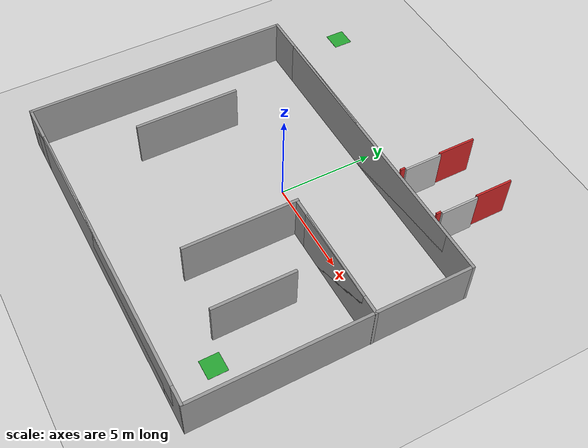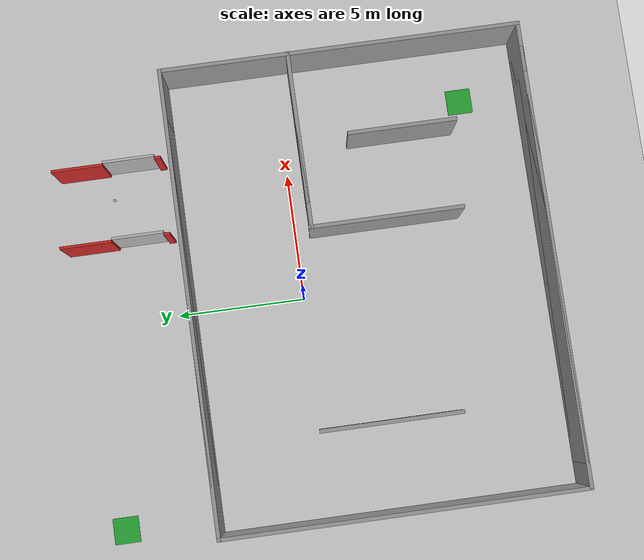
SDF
<sdf version='1.6'>
  <world name='default'>
    <light name='sun' type='directional'>
      <cast_shadows>1</cast_shadows>
      <pose frame=''>0 0 10 0 -0 0</pose>
      <diffuse>0.8 0.8 0.8 1</diffuse>
      <specular>0.1 0.1 0.1 1</specular>
      <attenuation>
        <range>1000</range>
        <constant>0.9</constant>
        <linear>0.01</linear>
        <quadratic>0.001</quadratic>
      </attenuation>
      <direction>-0.5 0.5 -1</direction>
    </light>
    <model name='ground_plane'>
      <static>1</static>
      <link name='link'>
        <collision name='collision'>
          <geometry>
            <plane>
              <normal>0 0 1</normal>
              <size>100 100</size>
            </plane>
          </geometry>
          <surface>
            <friction>
              <ode>
                <mu>100</mu>
                <mu2>50</mu2>
              </ode>
              <torsional>
                <ode/>
              </torsional>
            </friction>
            <contact>
              <ode/>
            </contact>
            <bounce/>
          </surface>
          <max_contacts>10</max_contacts>
        </collision>
        <visual name='visual'>
          <cast_shadows>0</cast_shadows>
          <geometry>
            <plane>
              <normal>0 0 1</normal>
              <size>100 100</size>
            </plane>
          </geometry>
          <material>
            <script>
              <uri>file://media/materials/scripts/gazebo.material</uri>
              <name>Gazebo/Grey</name>
            </script>
          </material>
        </visual>
        <self_collide>0</self_collide>
        <kinematic>0</kinematic>
        <gravity>1</gravity>
      </link>
    </model>
    <plugin name='elevator_event_plugin' filename='libSimEventsPlugin.so'>
      <region>
        <name>region1</name>
        <volume>
          <min>-8.5 7.5 0.0</min>
          <max>-7.5 8.5 0.5</max>
        </volume>
      </region>
      <region>
        <name>region2</name>
        <volume>
          <min>-7.5 7.5 0.05</min>
          <max>-6.5 8.5 0.5</max>
        </volume>
      </region>
      <region>
        <name>region3</name>
        <volume>
          <min>7.5 2.5 0.0</min>
          <max>8.5 3.5 0.5</max>
        </volume>
      </region>
      <region>
        <name>region4</name>
        <volume>
          <min>6.5 -8.5 0.05</min>
          <max>7.5 7.5 0.5</max>
        </volume>
      </region>
      <event>
        <name>region1_event</name>
        <type>occupied</type>
        <region>region1</region>
        <topic>~/door1</topic>
        <msg_data>0</msg_data>
      </event>
      <event>
        <name>region2_event</name>
        <type>occupied</type>
        <region>region2</region>
        <topic>~/door1</topic>
        <msg_data>1</msg_data>
      </event>
      <event>
        <name>region3_event</name>
        <type>occupied</type>
        <region>region3</region>
        <topic>~/door2</topic>
        <msg_data>0</msg_data>
      </event>
      <event>
        <name>region4_event</name>
        <type>occupied</type>
        <region>region4</region>
        <topic>~/door2</topic>
        <msg_data>1</msg_data>
      </event>
    </plugin>
    <model name='door1'>
      <pose frame=''>2 7 0 0 -0 0</pose>
      <link name='link'>
        <inertial>
          <mass>800</mass>
          <inertia>
            <ixx>1</ixx>
            <ixy>0</ixy>
            <ixz>0</ixz>
            <iyy>1</iyy>
            <iyz>0</iyz>
            <izz>1</izz>
          </inertia>
        </inertial>
        <collision name='floor_collision'>
          <geometry>
            <box>
              <size>0.01 0.01 0.01</size>
            </box>
          </geometry>
          <max_contacts>10</max_contacts>
          <surface>
            <contact>
              <ode/>
            </contact>
            <bounce/>
            <friction>
              <torsional>
                <ode/>
              </torsional>
              <ode/>
            </friction>
          </surface>
        </collision>
        <visual name='floor_visual'>
          <geometry>
            <box>
              <size>0.01 0.01 0.01</size>
            </box>
          </geometry>
        </visual>
        <collision name='wall1_collision'>
          <pose frame=''>1 1 1.125 0 -0 0</pose>
          <geometry>
            <box>
              <size>0.1 2 2.25</size>
            </box>
          </geometry>
          <max_contacts>10</max_contacts>
          <surface>
            <contact>
              <ode/>
            </contact>
            <bounce/>
            <friction>
              <torsional>
                <ode/>
              </torsional>
              <ode/>
            </friction>
          </surface>
        </collision>
        <visual name='wall1_visual'>
          <pose frame=''>1 1 1.125 0 -0 0</pose>
          <geometry>
            <box>
              <size>0.1 2 2.25</size>
            </box>
          </geometry>
          <material>
            <script>
              <name>Gazebo/Red</name>
              <uri>__default__</uri>
            </script>
          </material>
        </visual>
        <collision name='wall2_collision'>
          <pose frame=''>1 -2.125 1.125 0 -0 0</pose>
          <geometry>
            <box>
              <size>0.1 0.25 2.25</size>
            </box>
          </geometry>
          <max_contacts>10</max_contacts>
          <surface>
            <contact>
              <ode/>
            </contact>
            <bounce/>
            <friction>
              <torsional>
                <ode/>
              </torsional>
              <ode/>
            </friction>
          </surface>
        </collision>
        <visual name='wall2_visual'>
          <pose frame=''>1 -2.125 1.125 0 -0 0</pose>
          <geometry>
            <box>
              <size>0.1 0.25 2.25</size>
            </box>
          </geometry>
          <material>
            <script>
              <name>Gazebo/Red</name>
              <uri>__default__</uri>
            </script>
          </material>
        </visual>
        <self_collide>0</self_collide>
        <kinematic>0</kinematic>
        <gravity>1</gravity>
      </link>
      <link name='door'>
        <pose frame=''>1.1 -1 1.125 0 -0 0</pose>
        <collision name='collision'>
          <geometry>
            <box>
              <size>0.1 2 2.25</size>
            </box>
          </geometry>
          <max_contacts>10</max_contacts>
          <surface>
            <contact>
              <ode/>
            </contact>
            <bounce/>
            <friction>
              <torsional>
                <ode/>
              </torsional>
              <ode/>
            </friction>
          </surface>
        </collision>
        <visual name='visual'>
          <geometry>
            <box>
              <size>0.1 2 2.25</size>
            </box>
          </geometry>
        </visual>
        <self_collide>0</self_collide>
        <inertial>
          <inertia>
            <ixx>1</ixx>
            <ixy>0</ixy>
            <ixz>0</ixz>
            <iyy>1</iyy>
            <iyz>0</iyz>
            <izz>1</izz>
          </inertia>
          <mass>1</mass>
        </inertial>
        <kinematic>0</kinematic>
        <gravity>1</gravity>
      </link>
      <joint name='door' type='prismatic'>
        <parent>link</parent>
        <child>door</child>
        <axis>
          <xyz>0 1 0</xyz>
          <limit>
            <lower>0</lower>
            <upper>2</upper>
            <effort>10</effort>
          </limit>
          <dynamics>
            <damping>2</damping>
            <spring_reference>0</spring_reference>
            <spring_stiffness>0</spring_stiffness>
          </dynamics>
          <use_parent_model_frame>0</use_parent_model_frame>
        </axis>
      </joint>
      <joint name='lift' type='prismatic'>
        <parent>world</parent>
        <child>link</child>
        <axis>
          <xyz>0 0 1</xyz>
          <limit>
            <lower>0</lower>
            <upper>10</upper>
            <effort>100000</effort>
          </limit>
          <dynamics>
            <damping>50</damping>
            <spring_reference>0</spring_reference>
            <spring_stiffness>0</spring_stiffness>
          </dynamics>
          <use_parent_model_frame>0</use_parent_model_frame>
        </axis>
        <physics>
          <ode>
            <implicit_spring_damper>1</implicit_spring_damper>
            <limit>
              <cfm>0</cfm>
              <erp>0.2</erp>
            </limit>
          </ode>
        </physics>
      </joint>
      <plugin name='door1_plugin' filename='libdoor.so'>
        <lift_joint>door1::lift</lift_joint>
        <door_joint>door1::door</door_joint>
        <floor_height>3.075</floor_height>
        <door_wait_time>10</door_wait_time>
        <topic>~/door1</topic>
      </plugin>
    </model>
    <model name='door2'>
      <pose frame=''>5 7 0 0 -0 0</pose>
      <link name='link'>
        <inertial>
          <mass>800</mass>
          <inertia>
            <ixx>1</ixx>
            <ixy>0</ixy>
            <ixz>0</ixz>
            <iyy>1</iyy>
            <iyz>0</iyz>
            <izz>1</izz>
          </inertia>
        </inertial>
        <collision name='floor_collision'>
          <geometry>
            <box>
              <size>0.1 0.1 0.01</size>
            </box>
          </geometry>
          <max_contacts>10</max_contacts>
          <surface>
            <contact>
              <ode/>
            </contact>
            <bounce/>
            <friction>
              <torsional>
                <ode/>
              </torsional>
              <ode/>
            </friction>
          </surface>
        </collision>
        <visual name='floor_visual'>
          <geometry>
            <box>
              <size>0.1 0.1 0.01</size>
            </box>
          </geometry>
        </visual>
        <collision name='wall1_collision'>
          <pose frame=''>1 1 1.125 0 -0 0</pose>
          <geometry>
            <box>
              <size>0.1 2 2.25</size>
            </box>
          </geometry>
          <max_contacts>10</max_contacts>
          <surface>
            <contact>
              <ode/>
            </contact>
            <bounce/>
            <friction>
              <torsional>
                <ode/>
              </torsional>
              <ode/>
            </friction>
          </surface>
        </collision>
        <visual name='wall1_visual'>
          <pose frame=''>1 1 1.125 0 -0 0</pose>
          <geometry>
            <box>
              <size>0.1 2 2.25</size>
            </box>
          </geometry>
          <material>
            <script>
              <name>Gazebo/Red</name>
              <uri>__default__</uri>
            </script>
          </material>
        </visual>
        <collision name='wall2_collision'>
          <pose frame=''>1 -2.125 1.125 0 -0 0</pose>
          <geometry>
            <box>
              <size>0.1 0.25 2.25</size>
            </box>
          </geometry>
          <max_contacts>10</max_contacts>
          <surface>
            <contact>
              <ode/>
            </contact>
            <bounce/>
            <friction>
              <torsional>
                <ode/>
              </torsional>
              <ode/>
            </friction>
          </surface>
        </collision>
        <visual name='wall2_visual'>
          <pose frame=''>1 -2.125 1.125 0 -0 0</pose>
          <geometry>
            <box>
              <size>0.1 0.25 2.25</size>
            </box>
          </geometry>
          <material>
            <script>
              <name>Gazebo/Red</name>
              <uri>__default__</uri>
            </script>
          </material>
        </visual>
        <self_collide>0</self_collide>
        <kinematic>0</kinematic>
        <gravity>1</gravity>
      </link>
      <link name='door'>
        <pose frame=''>1.1 -1 1.125 0 -0 0</pose>
        <collision name='collision'>
          <geometry>
            <box>
              <size>0.1 2 2.25</size>
            </box>
          </geometry>
          <max_contacts>10</max_contacts>
          <surface>
            <contact>
              <ode/>
            </contact>
            <bounce/>
            <friction>
              <torsional>
                <ode/>
              </torsional>
              <ode/>
            </friction>
          </surface>
        </collision>
        <visual name='visual'>
          <geometry>
            <box>
              <size>0.1 2 2.25</size>
            </box>
          </geometry>
        </visual>
        <self_collide>0</self_collide>
        <inertial>
          <inertia>
            <ixx>1</ixx>
            <ixy>0</ixy>
            <ixz>0</ixz>
            <iyy>1</iyy>
            <iyz>0</iyz>
            <izz>1</izz>
          </inertia>
          <mass>1</mass>
        </inertial>
        <kinematic>0</kinematic>
        <gravity>1</gravity>
      </link>
      <joint name='door' type='prismatic'>
        <parent>link</parent>
        <child>door</child>
        <axis>
          <xyz>0 1 0</xyz>
          <limit>
            <lower>0</lower>
            <upper>2</upper>
            <effort>10</effort>
          </limit>
          <dynamics>
            <damping>2</damping>
            <spring_reference>0</spring_reference>
            <spring_stiffness>0</spring_stiffness>
          </dynamics>
          <use_parent_model_frame>0</use_parent_model_frame>
        </axis>
      </joint>
      <joint name='lift' type='prismatic'>
        <parent>world</parent>
        <child>link</child>
        <axis>
          <xyz>0 0 1</xyz>
          <limit>
            <lower>0</lower>
            <upper>10</upper>
            <effort>100000</effort>
          </limit>
          <dynamics>
            <damping>50</damping>
            <spring_reference>0</spring_reference>
            <spring_stiffness>0</spring_stiffness>
          </dynamics>
          <use_parent_model_frame>0</use_parent_model_frame>
        </axis>
        <physics>
          <ode>
            <implicit_spring_damper>1</implicit_spring_damper>
            <limit>
              <cfm>0</cfm>
              <erp>0.2</erp>
            </limit>
          </ode>
        </physics>
      </joint>
      <plugin name='door2_plugin' filename='libdoor.so'>
        <lift_joint>door2::lift</lift_joint>
        <door_joint>door2::door</door_joint>
        <floor_height>3.075</floor_height>
        <door_wait_time>10</door_wait_time>
        <topic>~/door2</topic>
      </plugin>
    </model>
    <gravity>0 0 -9.8</gravity>
    <magnetic_field>6e-06 2.3e-05 -4.2e-05</magnetic_field>
    <atmosphere type='adiabatic'/>
    <physics name='default_physics' default='0' type='ode'>
      <max_step_size>0.001</max_step_size>
      <real_time_factor>1</real_time_factor>
      <real_time_update_rate>1000</real_time_update_rate>
    </physics>
    <scene>
      <ambient>0.4 0.4 0.4 1</ambient>
      <background>0.7 0.7 0.7 1</background>
      <shadows>1</shadows>
    </scene>
    <spherical_coordinates>
      <surface_model>EARTH_WGS84</surface_model>
      <latitude_deg>0</latitude_deg>
      <longitude_deg>0</longitude_deg>
      <elevation>0</elevation>
      <heading_deg>0</heading_deg>
    </spherical_coordinates>
    <gui fullscreen='0'>
      <camera name='user_camera'>
        <pose frame=''>-1.19942 -1.38523 26.6581 0 1.4018 1.60171</pose>
        <view_controller>orbit</view_controller>
        <projection_type>perspective</projection_type>
      </camera>
    </gui>

    <model name='switch'>
      <link name='link'>
        <pose frame=''>0 0 0 0 -0 0</pose>
        <inertial>
          <mass>1</mass>
          <inertia>
            <ixx>0.166667</ixx>
            <ixy>0</ixy>
            <ixz>0</ixz>
            <iyy>0.166667</iyy>
            <iyz>0</iyz>
            <izz>0.166667</izz>
          </inertia>
          <pose frame=''>0 0 0 0 -0 0</pose>
        </inertial>
        <self_collide>0</self_collide>
        <kinematic>0</kinematic>
        <gravity>0</gravity>
        <visual name='visual'>
          <geometry>
            <box>
              <size>1 1 0.01</size>
            </box>
          </geometry>
          <material>
            <script>
              <name>Gazebo/Green</name>
              <uri>__default__</uri>
            </script>
          </material>
          <pose frame=''>0 0 0 0 -0 0</pose>
          <cast_shadows>1</cast_shadows>
          <transparency>0</transparency>
        </visual>
        <collision name='collision'>
          <laser_retro>0</laser_retro>
          <max_contacts>10</max_contacts>
          <pose frame=''>0 0 0.005 0 -0 0</pose>
          <geometry>
            <box>
              <size>0.01 0.01 0.01</size>
            </box>
          </geometry>
          <surface>
            <friction>
              <ode>
                <mu>1</mu>
                <mu2>1</mu2>
                <fdir1>0 0 0</fdir1>
                <slip1>0</slip1>
                <slip2>0</slip2>
              </ode>
              <torsional>
                <coefficient>1</coefficient>
                <patch_radius>0</patch_radius>
                <surface_radius>0</surface_radius>
                <use_patch_radius>1</use_patch_radius>
                <ode>
                  <slip>0</slip>
                </ode>
              </torsional>
            </friction>
            <bounce>
              <restitution_coefficient>0</restitution_coefficient>
              <threshold>1e+06</threshold>
            </bounce>
            <contact>
              <collide_without_contact>0</collide_without_contact>
              <collide_without_contact_bitmask>1</collide_without_contact_bitmask>
              <collide_bitmask>1</collide_bitmask>
              <ode>
                <soft_cfm>0</soft_cfm>
                <soft_erp>0.2</soft_erp>
                <kp>1e+13</kp>
                <kd>1</kd>
                <max_vel>0.01</max_vel>
                <min_depth>0</min_depth>
              </ode>
              <bullet>
                <split_impulse>1</split_impulse>
                <split_impulse_penetration_threshold>-0.01</split_impulse_penetration_threshold>
                <soft_cfm>0</soft_cfm>
                <soft_erp>0.2</soft_erp>
                <kp>1e+13</kp>
                <kd>1</kd>
              </bullet>
            </contact>
          </surface>
        </collision>
      </link>
      <static>1</static>
      <allow_auto_disable>1</allow_auto_disable>
      <pose frame=''>-8 8 0.5 0 -0 0</pose>
    </model>
    <model name='switch_0'>
      <link name='link'>
        <pose frame=''>0 0 0 0 -0 0</pose>
        <inertial>
          <mass>1</mass>
          <inertia>
            <ixx>0.166667</ixx>
            <ixy>0</ixy>
            <ixz>0</ixz>
            <iyy>0.166667</iyy>
            <iyz>0</iyz>
            <izz>0.166667</izz>
          </inertia>
          <pose frame=''>0 0 0 0 -0 0</pose>
        </inertial>
        <self_collide>0</self_collide>
        <kinematic>0</kinematic>
        <gravity>0</gravity>
        <visual name='visual'>
          <geometry>
            <box>
              <size>1 1 0.01</size>
            </box>
          </geometry>
          <material>
            <script>
              <name>Gazebo/Green</name>
              <uri>__default__</uri>
            </script>
          </material>
          <pose frame=''>0 0 0.005 0 -0 0</pose>
          <cast_shadows>1</cast_shadows>
          <transparency>0</transparency>
        </visual>
        <collision name='collision'>
          <laser_retro>0</laser_retro>
          <max_contacts>10</max_contacts>
          <pose frame=''>0 0 0.005 0 -0 0</pose>
          <geometry>
            <box>
              <size>0.01 0.01 0.01</size>
            </box>
          </geometry>
          <surface>
            <friction>
              <ode>
                <mu>1</mu>
                <mu2>1</mu2>
                <fdir1>0 0 0</fdir1>
                <slip1>0</slip1>
                <slip2>0</slip2>
              </ode>
              <torsional>
                <coefficient>1</coefficient>
                <patch_radius>0</patch_radius>
                <surface_radius>0</surface_radius>
                <use_patch_radius>1</use_patch_radius>
                <ode>
                  <slip>0</slip>
                </ode>
              </torsional>
            </friction>
            <bounce>
              <restitution_coefficient>0</restitution_coefficient>
              <threshold>1e+06</threshold>
            </bounce>
            <contact>
              <collide_without_contact>0</collide_without_contact>
              <collide_without_contact_bitmask>1</collide_without_contact_bitmask>
              <collide_bitmask>1</collide_bitmask>
              <ode>
                <soft_cfm>0</soft_cfm>
                <soft_erp>0.2</soft_erp>
                <kp>1e+13</kp>
                <kd>1</kd>
                <max_vel>0.01</max_vel>
                <min_depth>0</min_depth>
              </ode>
              <bullet>
                <split_impulse>1</split_impulse>
                <split_impulse_penetration_threshold>-0.01</split_impulse_penetration_threshold>
                <soft_cfm>0</soft_cfm>
                <soft_erp>0.2</soft_erp>
                <kp>1e+13</kp>
                <kd>1</kd>
              </bullet>
            </contact>
          </surface>
        </collision>
      </link>
      <static>1</static>
      <allow_auto_disable>1</allow_auto_disable>
      <pose frame=''>7.11349 -7.28468 0 0 -0 0</pose>
    </model>
    <model name='my_world'>
      <link name='Wall_0'>
        <pose frame=''>-0.008 9 0 0 -0 0</pose>
        <inertial>
          <mass>1</mass>
          <pose frame=''>0 0 0 0 -0 0</pose>
          <inertia>
            <ixx>1</ixx>
            <ixy>0</ixy>
            <ixz>0</ixz>
            <iyy>1</iyy>
            <iyz>0</iyz>
            <izz>1</izz>
          </inertia>
        </inertial>
        <self_collide>0</self_collide>
        <kinematic>0</kinematic>
        <visual name='ModelPreview_1::Wall_0::visual_1'>
          <pose frame=''>0 0 1.25 0 -0 0</pose>
          <geometry>
            <box>
              <size>14.15 0.15 2.5</size>
            </box>
          </geometry>
          <material>
            <script>
              <uri>file://media/materials/scripts/gazebo.material</uri>
              <name>Gazebo/Grey</name>
            </script>
            <ambient>1 1 1 1</ambient>
            <diffuse>0.7 0.7 0.7 1</diffuse>
            <specular>0.01 0.01 0.01 1</specular>
            <emissive>0 0 0 1</emissive>
            <shader type='vertex'>
              <normal_map>__default__</normal_map>
            </shader>
          </material>
          <cast_shadows>1</cast_shadows>
          <transparency>0</transparency>
        </visual>
        <visual name='Wall_0_Visual'>
          <pose frame=''>0 0 1.25 0 -0 0</pose>
          <geometry>
            <box>
              <size>18.15 0.15 2.5</size>
            </box>
          </geometry>
          <material>
            <script>
              <uri>file://media/materials/scripts/gazebo.material</uri>
              <name>Gazebo/Grey</name>
            </script>
            <ambient>1 1 1 1</ambient>
            <diffuse>0.7 0.7 0.7 1</diffuse>
            <specular>0.01 0.01 0.01 1</specular>
            <emissive>0 0 0 1</emissive>
            <shader type='vertex'>
              <normal_map>__default__</normal_map>
            </shader>
          </material>
          <cast_shadows>1</cast_shadows>
          <transparency>0</transparency>
        </visual>
        <collision name='Wall_0_Collision'>
          <laser_retro>0</laser_retro>
          <max_contacts>10</max_contacts>
          <pose frame=''>0 0 1.25 0 -0 0</pose>
          <geometry>
            <box>
              <size>18.15 0.15 2.5</size>
            </box>
          </geometry>
          <surface>
            <friction>
              <ode>
                <mu>1</mu>
                <mu2>1</mu2>
                <fdir1>0 0 0</fdir1>
                <slip1>0</slip1>
                <slip2>0</slip2>
              </ode>
              <torsional>
                <coefficient>1</coefficient>
                <patch_radius>0</patch_radius>
                <surface_radius>0</surface_radius>
                <use_patch_radius>1</use_patch_radius>
                <ode>
                  <slip>0</slip>
                </ode>
              </torsional>
            </friction>
            <bounce>
              <restitution_coefficient>0</restitution_coefficient>
              <threshold>1e+06</threshold>
            </bounce>
            <contact>
              <collide_without_contact>0</collide_without_contact>
              <collide_without_contact_bitmask>1</collide_without_contact_bitmask>
              <collide_bitmask>1</collide_bitmask>
              <ode>
                <soft_cfm>0</soft_cfm>
                <soft_erp>0.2</soft_erp>
                <kp>1e+13</kp>
                <kd>1</kd>
                <max_vel>0.01</max_vel>
                <min_depth>0</min_depth>
              </ode>
              <bullet>
                <split_impulse>1</split_impulse>
                <split_impulse_penetration_threshold>-0.01</split_impulse_penetration_threshold>
                <soft_cfm>0</soft_cfm>
                <soft_erp>0.2</soft_erp>
                <kp>1e+13</kp>
                <kd>1</kd>
              </bullet>
            </contact>
          </surface>
        </collision>
        <gravity>1</gravity>
      </link>
      <link name='Wall_10'>
        <pose frame=''>5.57658 0 0 0 0 -1.5708</pose>
        <inertial>
          <mass>1</mass>
          <pose frame=''>0 0 0 0 -0 0</pose>
          <inertia>
            <ixx>1</ixx>
            <ixy>0</ixy>
            <ixz>0</ixz>
            <iyy>1</iyy>
            <iyz>0</iyz>
            <izz>1</izz>
          </inertia>
        </inertial>
        <self_collide>0</self_collide>
        <kinematic>0</kinematic>
        <gravity>1</gravity>
        <visual name='Wall_10_Visual'>
          <pose frame=''>0 0 1.25 0 -0 0</pose>
          <geometry>
            <box>
              <size>4.25 0.15 2.5</size>
            </box>
          </geometry>
          <material>
            <script>
              <uri>file://media/materials/scripts/gazebo.material</uri>
              <name>Gazebo/Grey</name>
            </script>
            <ambient>1 1 1 1</ambient>
            <diffuse>0.7 0.7 0.7 1</diffuse>
            <specular>0.01 0.01 0.01 1</specular>
            <emissive>0 0 0 1</emissive>
            <shader type='vertex'>
              <normal_map>__default__</normal_map>
            </shader>
          </material>
          <cast_shadows>1</cast_shadows>
          <transparency>0</transparency>
        </visual>
        <collision name='Wall_10_Collision'>
          <laser_retro>0</laser_retro>
          <max_contacts>10</max_contacts>
          <pose frame=''>0 0 1.25 0 -0 0</pose>
          <geometry>
            <box>
              <size>4.25 0.15 2.5</size>
            </box>
          </geometry>
          <surface>
            <friction>
              <ode>
                <mu>1</mu>
                <mu2>1</mu2>
                <fdir1>0 0 0</fdir1>
                <slip1>0</slip1>
                <slip2>0</slip2>
              </ode>
              <torsional>
                <coefficient>1</coefficient>
                <patch_radius>0</patch_radius>
                <surface_radius>0</surface_radius>
                <use_patch_radius>1</use_patch_radius>
                <ode>
                  <slip>0</slip>
                </ode>
              </torsional>
            </friction>
            <bounce>
              <restitution_coefficient>0</restitution_coefficient>
              <threshold>1e+06</threshold>
            </bounce>
            <contact>
              <collide_without_contact>0</collide_without_contact>
              <collide_without_contact_bitmask>1</collide_without_contact_bitmask>
              <collide_bitmask>1</collide_bitmask>
              <ode>
                <soft_cfm>0</soft_cfm>
                <soft_erp>0.2</soft_erp>
                <kp>1e+13</kp>
                <kd>1</kd>
                <max_vel>0.01</max_vel>
                <min_depth>0</min_depth>
              </ode>
              <bullet>
                <split_impulse>1</split_impulse>
                <split_impulse_penetration_threshold>-0.01</split_impulse_penetration_threshold>
                <soft_cfm>0</soft_cfm>
                <soft_erp>0.2</soft_erp>
                <kp>1e+13</kp>
                <kd>1</kd>
              </bullet>
            </contact>
          </surface>
        </collision>
      </link>
      <link name='Wall_12'>
        <pose frame=''>5.583 4.0 0 0 -0 3.14159</pose>
        <inertial>
          <mass>1</mass>
          <pose frame=''>0 0 0 0 -0 0</pose>
          <inertia>
            <ixx>1</ixx>
            <ixy>0</ixy>
            <ixz>0</ixz>
            <iyy>1</iyy>
            <iyz>0</iyz>
            <izz>1</izz>
          </inertia>
        </inertial>
        <self_collide>0</self_collide>
        <kinematic>0</kinematic>
        <visual name='ModelPreview_1::Wall_12::visual_1'>
          <pose frame=''>0 0 1.25 0 -0 0</pose>
          <geometry>
            <box>
              <size>5 0.15 2.5</size>
            </box>
          </geometry>
          <material>
            <script>
              <uri>file://media/materials/scripts/gazebo.material</uri>
              <name>Gazebo/Grey</name>
            </script>
            <ambient>1 1 1 1</ambient>
            <diffuse>0.7 0.7 0.7 1</diffuse>
            <specular>0.01 0.01 0.01 1</specular>
            <emissive>0 0 0 1</emissive>
            <shader type='vertex'>
              <normal_map>__default__</normal_map>
            </shader>
          </material>
          <cast_shadows>1</cast_shadows>
          <transparency>0</transparency>
        </visual>
        <visual name='ModelPreview_1::Wall_12::visual_2'>
          <pose frame=''>0 0 1.25 0 -0 0</pose>
          <geometry>
            <box>
              <size>5 0.15 2.5</size>
            </box>
          </geometry>
          <material>
            <script>
              <uri>file://media/materials/scripts/gazebo.material</uri>
              <name>Gazebo/Grey</name>
            </script>
            <ambient>1 1 1 1</ambient>
            <diffuse>0.7 0.7 0.7 1</diffuse>
            <specular>0.01 0.01 0.01 1</specular>
            <emissive>0 0 0 1</emissive>
            <shader type='vertex'>
              <normal_map>__default__</normal_map>
            </shader>
          </material>
          <cast_shadows>1</cast_shadows>
          <transparency>0</transparency>
        </visual>
        <visual name='Wall_12_Visual'>
          <pose frame=''>0 0 1.25 0 -0 0</pose>
          <geometry>
            <box>
              <size>7 0.15 2.5</size>
            </box>
          </geometry>
          <material>
            <script>
              <uri>file://media/materials/scripts/gazebo.material</uri>
              <name>Gazebo/Grey</name>
            </script>
            <ambient>1 1 1 1</ambient>
            <diffuse>0.7 0.7 0.7 1</diffuse>
            <specular>0.01 0.01 0.01 1</specular>
            <emissive>0 0 0 1</emissive>
            <shader type='vertex'>
              <normal_map>__default__</normal_map>
            </shader>
          </material>
          <cast_shadows>1</cast_shadows>
          <transparency>0</transparency>
        </visual>
        <collision name='Wall_12_Collision'>
          <laser_retro>0</laser_retro>
          <max_contacts>10</max_contacts>
          <pose frame=''>0 0 1.25 0 -0 0</pose>
          <geometry>
            <box>
              <size>7 0.15 2.5</size>
            </box>
          </geometry>
          <surface>
            <friction>
              <ode>
                <mu>1</mu>
                <mu2>1</mu2>
                <fdir1>0 0 0</fdir1>
                <slip1>0</slip1>
                <slip2>0</slip2>
              </ode>
              <torsional>
                <coefficient>1</coefficient>
                <patch_radius>0</patch_radius>
                <surface_radius>0</surface_radius>
                <use_patch_radius>1</use_patch_radius>
                <ode>
                  <slip>0</slip>
                </ode>
              </torsional>
            </friction>
            <bounce>
              <restitution_coefficient>0</restitution_coefficient>
              <threshold>1e+06</threshold>
            </bounce>
            <contact>
              <collide_without_contact>0</collide_without_contact>
              <collide_without_contact_bitmask>1</collide_without_contact_bitmask>
              <collide_bitmask>1</collide_bitmask>
              <ode>
                <soft_cfm>0</soft_cfm>
                <soft_erp>0.2</soft_erp>
                <kp>1e+13</kp>
                <kd>1</kd>
                <max_vel>0.01</max_vel>
                <min_depth>0</min_depth>
              </ode>
              <bullet>
                <split_impulse>1</split_impulse>
                <split_impulse_penetration_threshold>-0.01</split_impulse_penetration_threshold>
                <soft_cfm>0</soft_cfm>
                <soft_erp>0.2</soft_erp>
                <kp>1e+13</kp>
                <kd>1</kd>
              </bullet>
            </contact>
          </surface>
        </collision>
        <gravity>1</gravity>
      </link>
      <link name='Wall_13'>
        <pose frame=''>2.15792 1.1 0 0 0 -1.57081</pose>
        <inertial>
          <mass>1</mass>
          <pose frame=''>0 0 0 0 -0 0</pose>
          <inertia>
            <ixx>1</ixx>
            <ixy>0</ixy>
            <ixz>0</ixz>
            <iyy>1</iyy>
            <iyz>0</iyz>
            <izz>1</izz>
          </inertia>
        </inertial>
        <self_collide>0</self_collide>
        <kinematic>0</kinematic>
        <visual name='Wall_13_Visual'>
          <pose frame=''>0 0 1.25 0 -0 0</pose>
          <geometry>
            <box>
              <size>6 0.15 2.5</size>
            </box>
          </geometry>
          <material>
            <script>
              <uri>file://media/materials/scripts/gazebo.material</uri>
              <name>Gazebo/Grey</name>
            </script>
            <ambient>1 1 1 1</ambient>
            <diffuse>0.7 0.7 0.7 1</diffuse>
            <specular>0.01 0.01 0.01 1</specular>
            <emissive>0 0 0 1</emissive>
            <shader type='vertex'>
              <normal_map>__default__</normal_map>
            </shader>
          </material>
          <cast_shadows>1</cast_shadows>
          <transparency>0</transparency>
        </visual>
        <collision name='Wall_13_Collision'>
          <laser_retro>0</laser_retro>
          <max_contacts>10</max_contacts>
          <pose frame=''>0 0 1.25 0 -0 0</pose>
          <geometry>
            <box>
              <size>6 0.15 2.5</size>
            </box>
          </geometry>
          <surface>
            <friction>
              <ode>
                <mu>1</mu>
                <mu2>1</mu2>
                <fdir1>0 0 0</fdir1>
                <slip1>0</slip1>
                <slip2>0</slip2>
              </ode>
              <torsional>
                <coefficient>1</coefficient>
                <patch_radius>0</patch_radius>
                <surface_radius>0</surface_radius>
                <use_patch_radius>1</use_patch_radius>
                <ode>
                  <slip>0</slip>
                </ode>
              </torsional>
            </friction>
            <bounce>
              <restitution_coefficient>0</restitution_coefficient>
              <threshold>1e+06</threshold>
            </bounce>
            <contact>
              <collide_without_contact>0</collide_without_contact>
              <collide_without_contact_bitmask>1</collide_without_contact_bitmask>
              <collide_bitmask>1</collide_bitmask>
              <ode>
                <soft_cfm>0</soft_cfm>
                <soft_erp>0.2</soft_erp>
                <kp>1e+13</kp>
                <kd>1</kd>
                <max_vel>0.01</max_vel>
                <min_depth>0</min_depth>
              </ode>
              <bullet>
                <split_impulse>1</split_impulse>
                <split_impulse_penetration_threshold>-0.01</split_impulse_penetration_threshold>
                <soft_cfm>0</soft_cfm>
                <soft_erp>0.2</soft_erp>
                <kp>1e+13</kp>
                <kd>1</kd>
              </bullet>
            </contact>
          </surface>
        </collision>
        <gravity>1</gravity>
      </link>
      <link name='Wall_2'>
        <pose frame=''>-0.008 -5 0 0 -0 0</pose>
        <inertial>
          <mass>1</mass>
          <pose frame=''>0 0 0 0 -0 0</pose>
          <inertia>
            <ixx>1</ixx>
            <ixy>0</ixy>
            <ixz>0</ixz>
            <iyy>1</iyy>
            <iyz>0</iyz>
            <izz>1</izz>
          </inertia>
        </inertial>
        <self_collide>0</self_collide>
        <kinematic>0</kinematic>
        <visual name='ModelPreview_1::Wall_2::visual_2'>
          <pose frame=''>0 0 1.25 0 -0 0</pose>
          <geometry>
            <box>
              <size>16.15 0.15 2.5</size>
            </box>
          </geometry>
          <material>
            <script>
              <uri>file://media/materials/scripts/gazebo.material</uri>
              <name>Gazebo/Grey</name>
            </script>
            <ambient>1 1 1 1</ambient>
            <diffuse>0.7 0.7 0.7 1</diffuse>
            <specular>0.01 0.01 0.01 1</specular>
            <emissive>0 0 0 1</emissive>
            <shader type='vertex'>
              <normal_map>__default__</normal_map>
            </shader>
          </material>
          <cast_shadows>1</cast_shadows>
          <transparency>0</transparency>
        </visual>
        <visual name='ModelPreview_1::Wall_2::visual_1'>
          <pose frame=''>0 0 1.25 0 -0 0</pose>
          <geometry>
            <box>
              <size>14.15 0.15 2.5</size>
            </box>
          </geometry>
          <material>
            <script>
              <uri>file://media/materials/scripts/gazebo.material</uri>
              <name>Gazebo/Grey</name>
            </script>
            <ambient>1 1 1 1</ambient>
            <diffuse>0.7 0.7 0.7 1</diffuse>
            <specular>0.01 0.01 0.01 1</specular>
            <emissive>0 0 0 1</emissive>
            <shader type='vertex'>
              <normal_map>__default__</normal_map>
            </shader>
          </material>
          <cast_shadows>1</cast_shadows>
          <transparency>0</transparency>
        </visual>
        <visual name='Wall_2_Visual'>
          <pose frame=''>0 0 1.25 0 -0 0</pose>
          <geometry>
            <box>
              <size>18.15 0.15 2.5</size>
            </box>
          </geometry>
          <material>
            <script>
              <uri>file://media/materials/scripts/gazebo.material</uri>
              <name>Gazebo/Grey</name>
            </script>
            <ambient>1 1 1 1</ambient>
            <diffuse>0.7 0.7 0.7 1</diffuse>
            <specular>0.01 0.01 0.01 1</specular>
            <emissive>0 0 0 1</emissive>
            <shader type='vertex'>
              <normal_map>__default__</normal_map>
            </shader>
          </material>
          <cast_shadows>1</cast_shadows>
          <transparency>0</transparency>
        </visual>
        <collision name='Wall_2_Collision'>
          <laser_retro>0</laser_retro>
          <max_contacts>10</max_contacts>
          <pose frame=''>0 0 1.25 0 -0 0</pose>
          <geometry>
            <box>
              <size>18.15 0.15 2.5</size>
            </box>
          </geometry>
          <surface>
            <friction>
              <ode>
                <mu>1</mu>
                <mu2>1</mu2>
                <fdir1>0 0 0</fdir1>
                <slip1>0</slip1>
                <slip2>0</slip2>
              </ode>
              <torsional>
                <coefficient>1</coefficient>
                <patch_radius>0</patch_radius>
                <surface_radius>0</surface_radius>
                <use_patch_radius>1</use_patch_radius>
                <ode>
                  <slip>0</slip>
                </ode>
              </torsional>
            </friction>
            <bounce>
              <restitution_coefficient>0</restitution_coefficient>
              <threshold>1e+06</threshold>
            </bounce>
            <contact>
              <collide_without_contact>0</collide_without_contact>
              <collide_without_contact_bitmask>1</collide_without_contact_bitmask>
              <collide_bitmask>1</collide_bitmask>
              <ode>
                <soft_cfm>0</soft_cfm>
                <soft_erp>0.2</soft_erp>
                <kp>1e+13</kp>
                <kd>1</kd>
                <max_vel>0.01</max_vel>
                <min_depth>0</min_depth>
              </ode>
              <bullet>
                <split_impulse>1</split_impulse>
                <split_impulse_penetration_threshold>-0.01</split_impulse_penetration_threshold>
                <soft_cfm>0</soft_cfm>
                <soft_erp>0.2</soft_erp>
                <kp>1e+13</kp>
                <kd>1</kd>
              </bullet>
            </contact>
          </surface>
        </collision>
        <gravity>1</gravity>
      </link>
      <link name='Wall_4'>
        <pose frame=''>-9.008 2 0 0 0 -1.5708</pose>
        <inertial>
          <mass>1</mass>
          <pose frame=''>0 0 0 0 -0 0</pose>
          <inertia>
            <ixx>1</ixx>
            <ixy>0</ixy>
            <ixz>0</ixz>
            <iyy>1</iyy>
            <iyz>0</iyz>
            <izz>1</izz>
          </inertia>
        </inertial>
        <self_collide>0</self_collide>
        <kinematic>0</kinematic>
        <visual name='Wall_4_Visual'>
          <pose frame=''>0 0 1.25 0 -0 0</pose>
          <geometry>
            <box>
              <size>14.15 0.15 2.5</size>
            </box>
          </geometry>
          <material>
            <script>
              <uri>file://media/materials/scripts/gazebo.material</uri>
              <name>Gazebo/Grey</name>
            </script>
            <ambient>1 1 1 1</ambient>
            <diffuse>0.7 0.7 0.7 1</diffuse>
            <specular>0.01 0.01 0.01 1</specular>
            <emissive>0 0 0 1</emissive>
            <shader type='vertex'>
              <normal_map>__default__</normal_map>
            </shader>
          </material>
          <cast_shadows>1</cast_shadows>
          <transparency>0</transparency>
        </visual>
        <collision name='Wall_4_Collision'>
          <laser_retro>0</laser_retro>
          <max_contacts>10</max_contacts>
          <pose frame=''>0 0 1.25 0 -0 0</pose>
          <geometry>
            <box>
              <size>14.15 0.15 2.5</size>
            </box>
          </geometry>
          <surface>
            <friction>
              <ode>
                <mu>1</mu>
                <mu2>1</mu2>
                <fdir1>0 0 0</fdir1>
                <slip1>0</slip1>
                <slip2>0</slip2>
              </ode>
              <torsional>
                <coefficient>1</coefficient>
                <patch_radius>0</patch_radius>
                <surface_radius>0</surface_radius>
                <use_patch_radius>1</use_patch_radius>
                <ode>
                  <slip>0</slip>
                </ode>
              </torsional>
            </friction>
            <bounce>
              <restitution_coefficient>0</restitution_coefficient>
              <threshold>1e+06</threshold>
            </bounce>
            <contact>
              <collide_without_contact>0</collide_without_contact>
              <collide_without_contact_bitmask>1</collide_without_contact_bitmask>
              <collide_bitmask>1</collide_bitmask>
              <ode>
                <soft_cfm>0</soft_cfm>
                <soft_erp>0.2</soft_erp>
                <kp>1e+13</kp>
                <kd>1</kd>
                <max_vel>0.01</max_vel>
                <min_depth>0</min_depth>
              </ode>
              <bullet>
                <split_impulse>1</split_impulse>
                <split_impulse_penetration_threshold>-0.01</split_impulse_penetration_threshold>
                <soft_cfm>0</soft_cfm>
                <soft_erp>0.2</soft_erp>
                <kp>1e+13</kp>
                <kd>1</kd>
              </bullet>
            </contact>
          </surface>
        </collision>
        <gravity>1</gravity>
      </link>
      <link name='Wall_6'>
        <pose frame=''>8.992 2 0 0 -0 1.5708</pose>
        <inertial>
          <mass>1</mass>
          <pose frame=''>0 0 0 0 -0 0</pose>
          <inertia>
            <ixx>1</ixx>
            <ixy>0</ixy>
            <ixz>0</ixz>
            <iyy>1</iyy>
            <iyz>0</iyz>
            <izz>1</izz>
          </inertia>
        </inertial>
        <self_collide>0</self_collide>
        <kinematic>0</kinematic>
        <visual name='ModelPreview_1::Wall_6::visual_1'>
          <pose frame=''>0 0 1.25 0 -0 0</pose>
          <geometry>
            <box>
              <size>14.15 0.15 2.5</size>
            </box>
          </geometry>
          <material>
            <script>
              <uri>file://media/materials/scripts/gazebo.material</uri>
              <name>Gazebo/Grey</name>
            </script>
            <ambient>1 1 1 1</ambient>
            <diffuse>0.7 0.7 0.7 1</diffuse>
            <specular>0.01 0.01 0.01 1</specular>
            <emissive>0 0 0 1</emissive>
            <shader type='vertex'>
              <normal_map>__default__</normal_map>
            </shader>
          </material>
          <cast_shadows>1</cast_shadows>
          <transparency>0</transparency>
        </visual>
        <collision name='Wall_6_Collision'>
          <laser_retro>0</laser_retro>
          <max_contacts>10</max_contacts>
          <pose frame=''>0 0 1.25 0 -0 0</pose>
          <geometry>
            <box>
              <size>14.15 0.15 2.5</size>
            </box>
          </geometry>
          <surface>
            <friction>
              <ode>
                <mu>1</mu>
                <mu2>1</mu2>
                <fdir1>0 0 0</fdir1>
                <slip1>0</slip1>
                <slip2>0</slip2>
              </ode>
              <torsional>
                <coefficient>1</coefficient>
                <patch_radius>0</patch_radius>
                <surface_radius>0</surface_radius>
                <use_patch_radius>1</use_patch_radius>
                <ode>
                  <slip>0</slip>
                </ode>
              </torsional>
            </friction>
            <bounce>
              <restitution_coefficient>0</restitution_coefficient>
              <threshold>1e+06</threshold>
            </bounce>
            <contact>
              <collide_without_contact>0</collide_without_contact>
              <collide_without_contact_bitmask>1</collide_without_contact_bitmask>
              <collide_bitmask>1</collide_bitmask>
              <ode>
                <soft_cfm>0</soft_cfm>
                <soft_erp>0.2</soft_erp>
                <kp>1e+13</kp>
                <kd>1</kd>
                <max_vel>0.01</max_vel>
                <min_depth>0</min_depth>
              </ode>
              <bullet>
                <split_impulse>1</split_impulse>
                <split_impulse_penetration_threshold>-0.01</split_impulse_penetration_threshold>
                <soft_cfm>0</soft_cfm>
                <soft_erp>0.2</soft_erp>
                <kp>1e+13</kp>
                <kd>1</kd>
              </bullet>
            </contact>
          </surface>
        </collision>
        <gravity>1</gravity>
      </link>
      <link name='Wall_8'>
        <pose frame=''>-5.55518 2 0 0 0 -1.5708</pose>
        <inertial>
          <mass>1</mass>
          <pose frame=''>0 0 0 0 -0 0</pose>
          <inertia>
            <ixx>1</ixx>
            <ixy>0</ixy>
            <ixz>0</ixz>
            <iyy>1</iyy>
            <iyz>0</iyz>
            <izz>1</izz>
          </inertia>
        </inertial>
        <self_collide>0</self_collide>
        <kinematic>0</kinematic>
        <gravity>1</gravity>
        <visual name='Wall_8_Visual'>
          <pose frame=''>0 0 1.25 0 -0 0</pose>
          <geometry>
            <box>
              <size>5.5 0.15 2.5</size>
            </box>
          </geometry>
          <material>
            <script>
              <uri>file://media/materials/scripts/gazebo.material</uri>
              <name>Gazebo/Grey</name>
            </script>
            <ambient>1 1 1 1</ambient>
            <diffuse>0.7 0.7 0.7 1</diffuse>
            <specular>0.01 0.01 0.01 1</specular>
            <emissive>0 0 0 1</emissive>
            <shader type='vertex'>
              <normal_map>__default__</normal_map>
            </shader>
          </material>
          <cast_shadows>1</cast_shadows>
          <transparency>0</transparency>
        </visual>
        <collision name='Wall_8_Collision'>
          <laser_retro>0</laser_retro>
          <max_contacts>10</max_contacts>
          <pose frame=''>0 0 1.25 0 -0 0</pose>
          <geometry>
            <box>
              <size>5.5 0.15 2.5</size>
            </box>
          </geometry>
          <surface>
            <friction>
              <ode>
                <mu>1</mu>
                <mu2>1</mu2>
                <fdir1>0 0 0</fdir1>
                <slip1>0</slip1>
                <slip2>0</slip2>
              </ode>
              <torsional>
                <coefficient>1</coefficient>
                <patch_radius>0</patch_radius>
                <surface_radius>0</surface_radius>
                <use_patch_radius>1</use_patch_radius>
                <ode>
                  <slip>0</slip>
                </ode>
              </torsional>
            </friction>
            <bounce>
              <restitution_coefficient>0</restitution_coefficient>
              <threshold>1e+06</threshold>
            </bounce>
            <contact>
              <collide_without_contact>0</collide_without_contact>
              <collide_without_contact_bitmask>1</collide_without_contact_bitmask>
              <collide_bitmask>1</collide_bitmask>
              <ode>
                <soft_cfm>0</soft_cfm>
                <soft_erp>0.2</soft_erp>
                <kp>1e+13</kp>
                <kd>1</kd>
                <max_vel>0.01</max_vel>
                <min_depth>0</min_depth>
              </ode>
              <bullet>
                <split_impulse>1</split_impulse>
                <split_impulse_penetration_threshold>-0.01</split_impulse_penetration_threshold>
                <soft_cfm>0</soft_cfm>
                <soft_erp>0.2</soft_erp>
                <kp>1e+13</kp>
                <kd>1</kd>
              </bullet>
            </contact>
          </surface>
        </collision>
      </link>
      <static>1</static>
      <allow_auto_disable>1</allow_auto_disable>
      <pose frame=''>0.313051 -4.63974 0 0 -0 0</pose>
    </model>
  </world>
</sdf>
